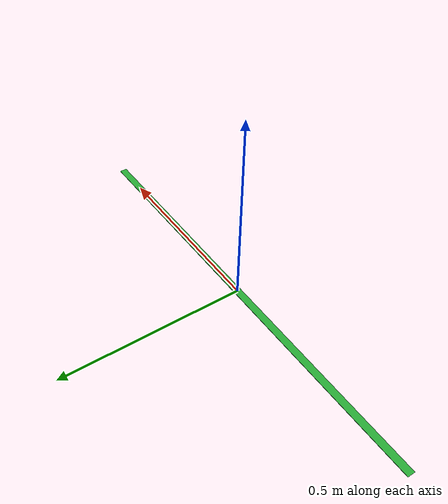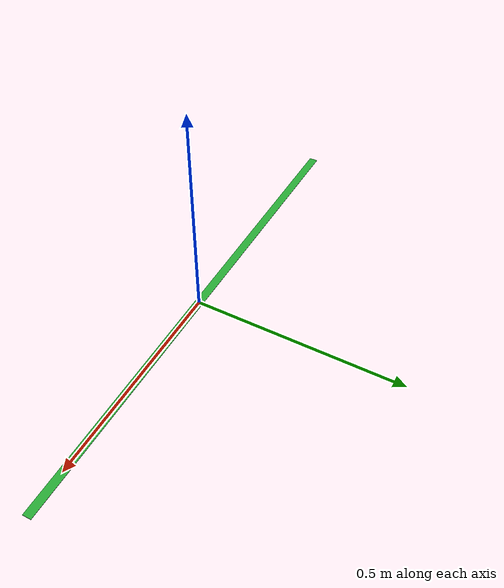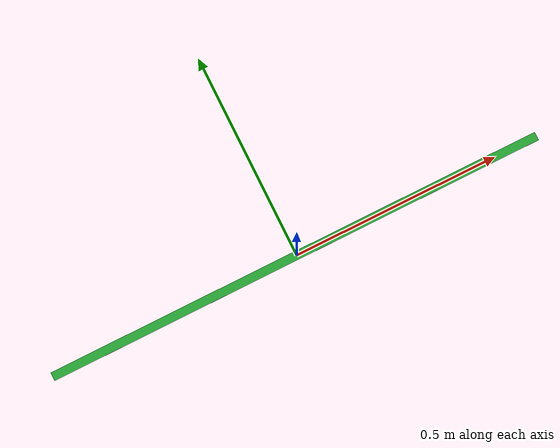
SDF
<?xml version="1.0" ?>
<sdf version="1.5">
<model name='road_charging_2'>
      <static>1</static>
      <link name='link'>
        <collision name='collision'>
          <geometry>
            <box>
              <size>1.21 0.02 0.001</size>
            </box>
          </geometry>
          <max_contacts>10</max_contacts>
          <surface>
            <contact>
              <ode/>
            </contact>
            <bounce/>
            <friction>
              <ode/>
            </friction>
          </surface>
        </collision>
        <visual name='visual'>
          <cast_shadows>0</cast_shadows>
          <geometry>
            <box>
              <size>1.21 0.02 0.001</size>
            </box>
          </geometry>
          <material>
            <script>
              <uri>file://media/materials/scripts/gazebo.material</uri>
              <name>Gazebo/Green</name>

            </script>
          </material>
        </visual>
        <self_collide>0</self_collide>
        <kinematic>0</kinematic>
        <gravity>1</gravity>
      </link>
    </model>
</sdf>
